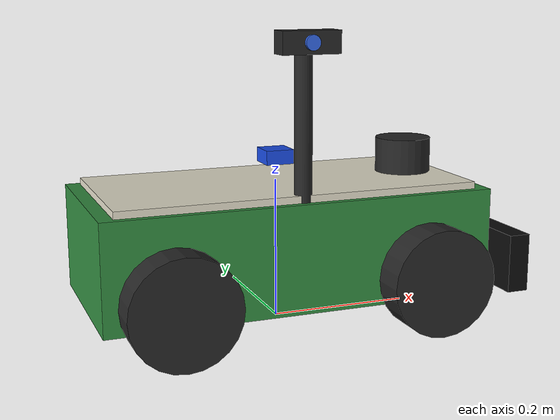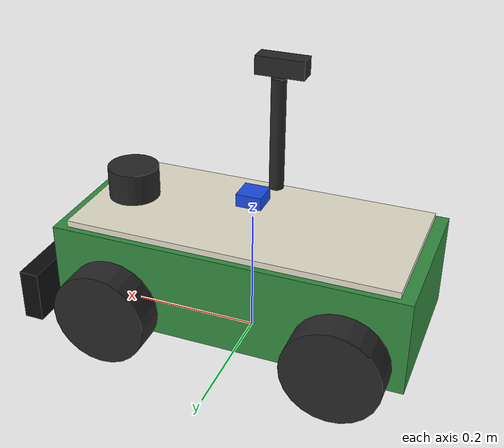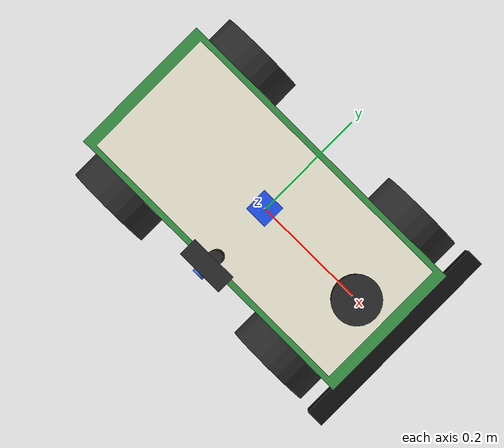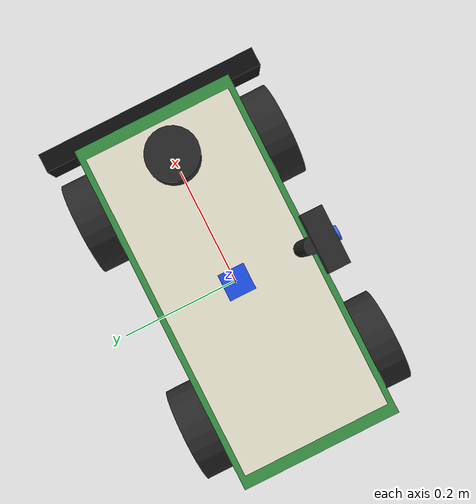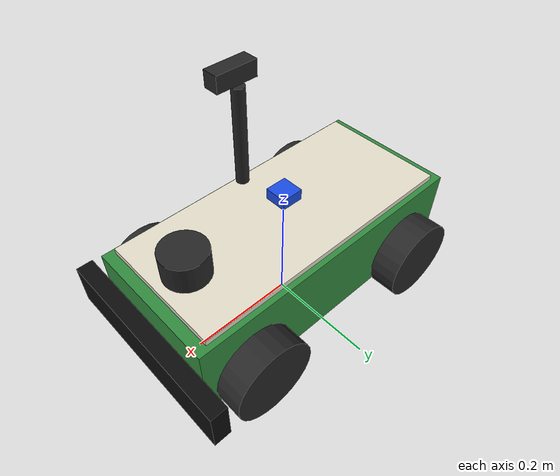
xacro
<?xml version="1.0"?>
<!--
  Greenhouse robot: 4-wheel skid-steer base, no sensors (teleop only).
  Frames follow REP-103 (x forward, y left, z up).
-->
<robot name="greenhouse_bot" xmlns:xacro="http://www.ros.org/wiki/xacro">

  <xacro:include filename="$(find description)/urdf/inertial_macros.xacro"/>

  <!-- Chassis -->
  <xacro:property name="chassis_length" value="0.55"/>
  <xacro:property name="chassis_width" value="0.25"/>
  <xacro:property name="chassis_height" value="0.15"/>
  <xacro:property name="chassis_z" value="0.04"/>
  <xacro:property name="chassis_mass" value="8.0"/>

  <!-- Wheels -->
  <xacro:property name="wheel_radius" value="0.075"/>
  <xacro:property name="wheel_width" value="0.05"/>
  <xacro:property name="wheel_mass" value="0.5"/>
  <xacro:property name="wheel_x" value="0.18"/>
  <xacro:property name="wheel_y" value="0.15"/>
  <xacro:property name="wheel_mu_lateral" value="0.3"/>
  <xacro:property name="wheel_separation_effective" value="0.35"/>

  <material name="leaf_green"><color rgba="0.20 0.55 0.25 1.0"/></material>
  <material name="dark_grey"><color rgba="0.15 0.15 0.15 1.0"/></material>
  <material name="cream"><color rgba="0.90 0.88 0.80 1.0"/></material>

  <!-- Base frames -->
  <link name="base_footprint"/>

  <link name="base_link"/>

  <joint name="base_footprint_joint" type="fixed">
    <parent link="base_footprint"/>
    <child link="base_link"/>
    <origin xyz="0 0 ${wheel_radius}" rpy="0 0 0"/>
  </joint>

  <!-- Chassis -->
  <link name="chassis">
    <visual>
      <geometry><box size="${chassis_length} ${chassis_width} ${chassis_height}"/></geometry>
      <material name="leaf_green"/>
    </visual>
    <!-- Cream top plate -->
    <visual>
      <origin xyz="0 0 ${chassis_height/2 + 0.005}" rpy="0 0 0"/>
      <geometry><box size="${chassis_length - 0.04} ${chassis_width - 0.02} 0.01"/></geometry>
      <material name="cream"/>
    </visual>
    <collision>
      <geometry><box size="${chassis_length} ${chassis_width} ${chassis_height}"/></geometry>
    </collision>
    <xacro:box_inertia m="${chassis_mass}" x="${chassis_length}" y="${chassis_width}" z="${chassis_height}">
      <origin xyz="0 0 0" rpy="0 0 0"/>
    </xacro:box_inertia>
  </link>

  <joint name="chassis_joint" type="fixed">
    <parent link="base_link"/>
    <child link="chassis"/>
    <origin xyz="0 0 ${chassis_z}" rpy="0 0 0"/>
  </joint>

  <!-- Wheel macro: prefix e.g. front_left, x/y signs place it on the chassis -->
  <xacro:macro name="wheel" params="prefix x_sign y_sign">
    <link name="${prefix}_wheel">
      <visual>
        <origin xyz="0 0 0" rpy="${pi/2} 0 0"/>
        <geometry><cylinder radius="${wheel_radius}" length="${wheel_width}"/></geometry>
        <material name="dark_grey"/>
      </visual>
      <collision>
        <origin xyz="0 0 0" rpy="${pi/2} 0 0"/>
        <geometry><cylinder radius="${wheel_radius}" length="${wheel_width}"/></geometry>
      </collision>
      <xacro:cylinder_inertia m="${wheel_mass}" r="${wheel_radius}" h="${wheel_width}">
        <origin xyz="0 0 0" rpy="${pi/2} 0 0"/>
      </xacro:cylinder_inertia>
    </link>

    <joint name="${prefix}_wheel_joint" type="continuous">
      <parent link="base_link"/>
      <child link="${prefix}_wheel"/>
      <origin xyz="${x_sign * wheel_x} ${y_sign * wheel_y} 0" rpy="0 0 0"/>
      <axis xyz="0 1 0"/>
    </joint>

    <gazebo reference="${prefix}_wheel">
      <mu1>${wheel_mu_lateral}</mu1>
      <mu2>1.0</mu2>
      <fdir1>0 0 1</fdir1>
    </gazebo>
  </xacro:macro>

  <xacro:wheel prefix="front_left" x_sign="1" y_sign="1"/>
  <xacro:wheel prefix="front_right" x_sign="1" y_sign="-1"/>
  <xacro:wheel prefix="rear_left" x_sign="-1" y_sign="1"/>
  <xacro:wheel prefix="rear_right" x_sign="-1" y_sign="-1"/>

  <xacro:include filename="$(find description)/urdf/gazebo.xacro"/>

  <!-- Sensors -->
  <xacro:include filename="$(find description)/urdf/camera.xacro"/>
  <xacro:include filename="$(find description)/urdf/lidar.xacro"/>
  <xacro:include filename="$(find description)/urdf/bumper.xacro"/>

  <xacro:include filename="$(find description)/urdf/imu.xacro"/>

</robot>

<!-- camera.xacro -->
<robot xmlns:xacro="http://www.ros.org/wiki/xacro">

  <xacro:property name="camera_mast_x" value="0.0"/>
  <xacro:property name="camera_mast_y" value="-0.105"/>   <!-- on the right edge of the top plate -->
  <xacro:property name="camera_yaw" value="${-pi/2}"/>     <!-- -pi/2 = right side, 0 = forward -->
  <xacro:property name="camera_z" value="0.325"/>          <!-- from base_link (+0.075 → 0.40 m above ground) -->
  <xacro:property name="camera_mast_radius" value="0.012"/>
  <xacro:property name="camera_mast_bottom" value="${chassis_z + chassis_height/2}"/>
  <xacro:property name="camera_mast_length" value="${camera_z - 0.015 - camera_mast_bottom}"/>

  <link name="camera_mast">
    <visual>
      <geometry><cylinder radius="${camera_mast_radius}" length="${camera_mast_length}"/></geometry>
      <material name="dark_grey"/>
    </visual>
    <xacro:cylinder_inertia m="0.03" r="${camera_mast_radius}" h="${camera_mast_length}">
      <origin xyz="0 0 0" rpy="0 0 0"/>
    </xacro:cylinder_inertia>
  </link>

  <joint name="camera_mast_joint" type="fixed">
    <parent link="base_link"/>
    <child link="camera_mast"/>
    <origin xyz="${camera_mast_x} ${camera_mast_y} ${camera_mast_bottom + camera_mast_length/2}" rpy="0 0 0"/>
  </joint>

  <!-- camera_link: x points where the camera looks -->
  <link name="camera_link">
    <visual>
      <geometry><box size="0.03 0.08 0.03"/></geometry>
      <material name="dark_grey"/>
    </visual>
    <!-- Lens -->
    <visual>
      <origin xyz="0.017 0 0" rpy="0 ${pi/2} 0"/>
      <geometry><cylinder radius="0.01" length="0.005"/></geometry>
      <material name="lens_blue"><color rgba="0.2 0.4 0.9 1.0"/></material>
    </visual>
    <collision>
      <geometry><box size="0.03 0.08 0.03"/></geometry>
    </collision>
    <xacro:box_inertia m="0.1" x="0.03" y="0.08" z="0.03">
      <origin xyz="0 0 0" rpy="0 0 0"/>
    </xacro:box_inertia>
  </link>

  <joint name="camera_joint" type="fixed">
    <parent link="base_link"/>
    <child link="camera_link"/>
    <origin xyz="${camera_mast_x + 0.015*cos(camera_yaw)} ${camera_mast_y + 0.015*sin(camera_yaw)} ${camera_z}"
            rpy="0 0 ${camera_yaw}"/>
  </joint>

  <!-- Optical frame (REP-103): z forward, x right, y down. Images are stamped with this frame. -->
  <link name="camera_optical_link"/>

  <joint name="camera_optical_joint" type="fixed">
    <parent link="camera_link"/>
    <child link="camera_optical_link"/>
    <origin xyz="0 0 0" rpy="${-pi/2} 0 ${-pi/2}"/>
  </joint>

  <gazebo reference="camera_link">
    <sensor name="camera" type="camera">
      <topic>camera/image</topic>
      <gz_frame_id>camera_optical_link</gz_frame_id>
      <update_rate>15</update_rate>
      <always_on>true</always_on>
      <visualize>true</visualize>
      <camera>
        <camera_info_topic>camera/camera_info</camera_info_topic>
        <horizontal_fov>1.3</horizontal_fov>
        <image>
          <width>640</width>
          <height>480</height>
          <format>R8G8B8</format>
        </image>
        <clip>
          <near>0.05</near>
          <far>10.0</far>
        </clip>
        <noise>
          <type>gaussian</type>
          <mean>0.0</mean>
          <stddev>0.005</stddev>
        </noise>
      </camera>
    </sensor>
  </gazebo>

</robot>

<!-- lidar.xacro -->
<robot xmlns:xacro="http://www.ros.org/wiki/xacro">

  <xacro:property name="lidar_x" value="0.2"/>
  <xacro:property name="lidar_radius" value="0.04"/>
  <xacro:property name="lidar_length" value="0.05"/>

  <link name="lidar_link">
    <visual>
      <geometry><cylinder radius="${lidar_radius}" length="${lidar_length}"/></geometry>
      <material name="dark_grey"/>
    </visual>
    <collision>
      <geometry><cylinder radius="${lidar_radius}" length="${lidar_length}"/></geometry>
    </collision>
    <xacro:cylinder_inertia m="0.2" r="${lidar_radius}" h="${lidar_length}">
      <origin xyz="0 0 0" rpy="0 0 0"/>
    </xacro:cylinder_inertia>
  </link>

  <joint name="lidar_joint" type="fixed">
    <parent link="base_link"/>
    <child link="lidar_link"/>
    <!-- Sits on the 1 cm top plate -->
    <origin xyz="${lidar_x} 0 ${chassis_z + chassis_height/2 + 0.01 + lidar_length/2}" rpy="0 0 0"/>
  </joint>

  <!-- URDF->SDF merges lidar_link into its parent, so gz_frame_id sets the frame_id of the scans -->
  <gazebo reference="lidar_link">
    <sensor name="lidar" type="gpu_lidar">
      <topic>scan</topic>
      <gz_frame_id>lidar_link</gz_frame_id>
      <update_rate>10</update_rate>
      <always_on>true</always_on>
      <visualize>true</visualize>
      <lidar>
        <scan>
          <horizontal>
            <samples>360</samples>
            <resolution>1</resolution>
            <min_angle>${-pi}</min_angle>
            <max_angle>${pi}</max_angle>
          </horizontal>
        </scan>
        <range>
          <min>0.12</min>
          <max>8.0</max>
          <resolution>0.01</resolution>
        </range>
        <noise>
          <type>gaussian</type>
          <mean>0.0</mean>
          <stddev>0.01</stddev>
        </noise>
      </lidar>
    </sensor>
  </gazebo>

</robot>

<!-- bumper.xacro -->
<robot xmlns:xacro="http://www.ros.org/wiki/xacro">

  <xacro:property name="bumper_thickness" value="0.03"/>
  <xacro:property name="bumper_width" value="0.36"/>    <!-- wheels reach y = ±0.175 -->
  <xacro:property name="bumper_height" value="0.08"/>
  <xacro:property name="bumper_z" value="0.02"/>        <!-- from base_link (+0.075 → 0.095 m above ground) -->

  <material name="bumper_black"><color rgba="0.05 0.05 0.05 1.0"/></material>

  <link name="bumper_link">
    <visual>
      <geometry><box size="${bumper_thickness} ${bumper_width} ${bumper_height}"/></geometry>
      <material name="bumper_black"/>
    </visual>
    <!-- Left unnamed on purpose: gz names it bumper_link_collision, which the sensor refers to -->
    <collision>
      <geometry><box size="${bumper_thickness} ${bumper_width} ${bumper_height}"/></geometry>
    </collision>
    <xacro:box_inertia m="0.1" x="${bumper_thickness}" y="${bumper_width}" z="${bumper_height}">
      <origin xyz="0 0 0" rpy="0 0 0"/>
    </xacro:box_inertia>
  </link>

  <joint name="bumper_joint" type="fixed">
    <parent link="base_link"/>
    <child link="bumper_link"/>
    <origin xyz="${chassis_length/2 + bumper_thickness/2} 0 ${bumper_z}" rpy="0 0 0"/>
  </joint>

  <!-- URDF->SDF would merge bumper_link into its parent and rename the collision
       (base_link_fixed_joint_lump__...), so the contact sensor would find nothing. Keep it a link. -->
  <gazebo reference="bumper_joint">
    <preserveFixedJoint>true</preserveFixedJoint>
  </gazebo>

  <gazebo reference="bumper_link">
    <sensor name="bumper" type="contact">
      <update_rate>30</update_rate>
      <always_on>true</always_on>
      <contact>
        <collision>bumper_link_collision</collision>
        <topic>bumper</topic>
      </contact>
    </sensor>
  </gazebo>

</robot>

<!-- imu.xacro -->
<robot xmlns:xacro="http://www.ros.org/wiki/xacro">

  <!-- IMU physical link -->
  <link name="imu_link">
    <visual>
      <geometry>
        <box size="0.04 0.04 0.02"/>
      </geometry>
      <material name="imu_blue">
        <color rgba="0.1 0.3 0.9 1.0"/>
      </material>
    </visual>

    <inertial>
      <origin xyz="0 0 0" rpy="0 0 0"/>
      <mass value="0.02"/>
      <inertia
        ixx="0.00001" ixy="0" ixz="0"
        iyy="0.00001" iyz="0"
        izz="0.00001"/>
    </inertial>
  </link>

  <!-- Attach IMU to robot body -->
  <joint name="imu_joint" type="fixed">
    <parent link="base_link"/>
    <child link="imu_link"/>
    <origin xyz="0 0 0.16" rpy="0 0 0"/>
  </joint>

  <!-- Gazebo IMU sensor -->
  <gazebo reference="imu_link">
    <sensor name="greenhouse_imu" type="imu">
      <always_on>true</always_on>
      <update_rate>30</update_rate>
      <topic>/imu</topic>
      <gz_frame_id>imu_link</gz_frame_id>
    </sensor>
  </gazebo>

</robot>
